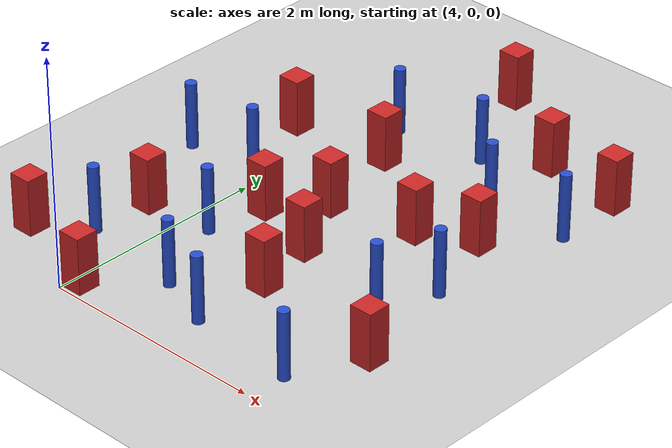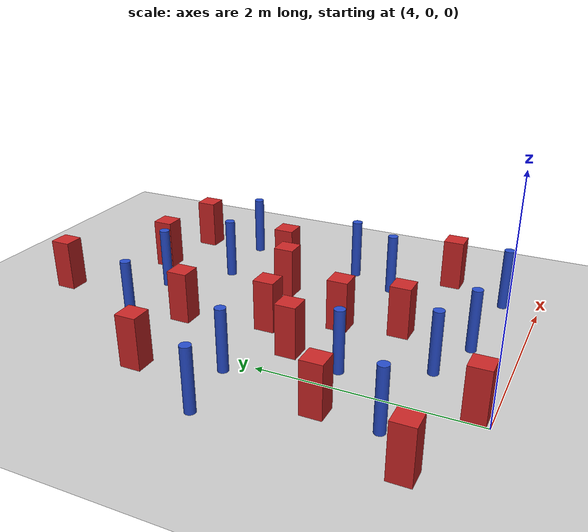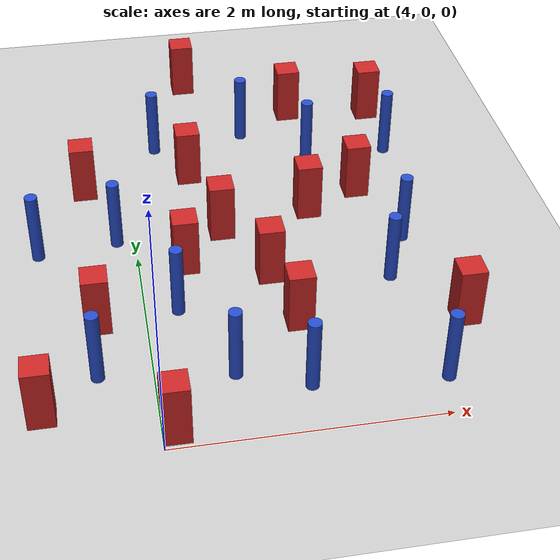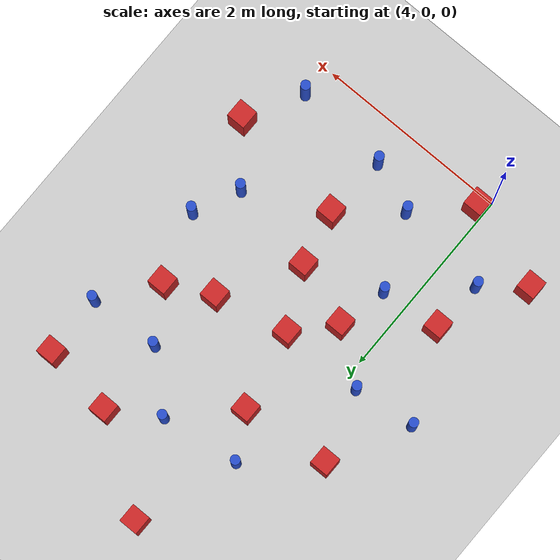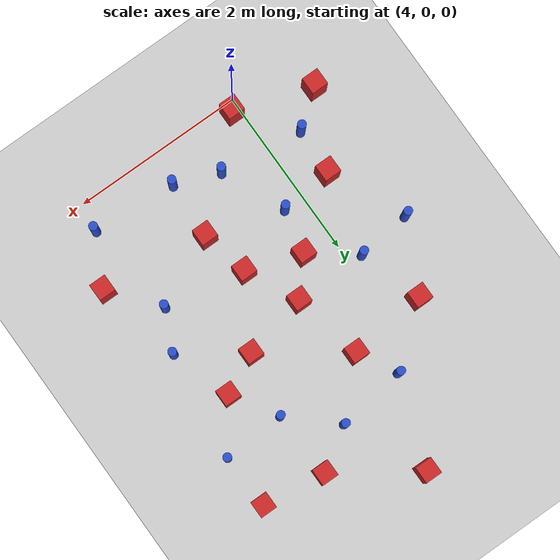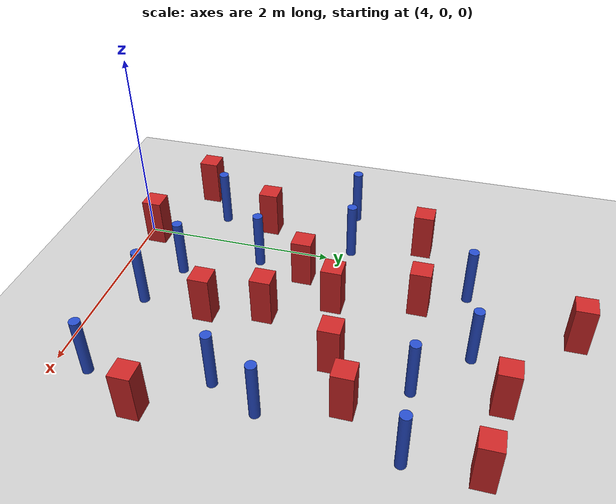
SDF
<sdf version="1.6">
 <world name="default">
  <model name="ground_plane">
   <static>1</static>
   <link name="link">
    <collision name="collision">
     <geometry><plane><normal>0 0 1</normal><size>100 100</size></plane></geometry>
     <surface><friction><ode><mu>100</mu><mu2>50</mu2></ode></friction></surface>
    </collision>
    <visual name="visual">
     <cast_shadows>0</cast_shadows>
     <geometry><plane><normal>0 0 1</normal><size>100 100</size></plane></geometry>
     <material>
      <ambient>1.0 1.0 1.0 1.0</ambient>
      <diffuse>0.8 0.8 0.8 1.0</diffuse>
      <specular>0.01 0.01 0.01 1.000000</specular>
     </material>
    </visual>
   </link>
  </model>
  <model name="pole_obstacle6">
   <static>true</static>
   <pose>3.60519064606 0.736603006341 2.88873142074e-08 -9.90536689285e-09 4.60219949002e-07 -1.20965994953e-07</pose>
   <link name="link">
    <pose>0 0 0.3 0 -0 0</pose>
    <inertial>
     <mass>1</mass>
     <inertia><ixx>0.145833</ixx><ixy>0</ixy><ixz>0</ixz><iyy>0.145833</iyy><iyz>0</iyz><izz>0.125</izz></inertia>
    </inertial>
    <collision name="collision">
     <geometry><cylinder><radius>0.05</radius><length>.6</length></cylinder></geometry>
    </collision>
    <visual name="visual">
     <geometry><cylinder><radius>0.05</radius><length>.6</length></cylinder></geometry>
     <material>
      <script><name>Gazebo/Blue</name><uri>file://media/materials/scripts/gazebo.material</uri></script>
     </material>
    </visual>
   </link>
  </model>
  <model name="pole_obstacle24">
   <static>true</static>
   <pose>5.08562448463 3.60974429058 2.88873142074e-08 -9.90536690245e-09 4.6021994898e-07 -1.20965994966e-07</pose>
   <link name="link">
    <pose>0 0 0.3 0 -0 0</pose>
    <inertial>
     <mass>1</mass>
     <inertia><ixx>0.145833</ixx><ixy>0</ixy><ixz>0</ixz><iyy>0.145833</iyy><iyz>0</iyz><izz>0.125</izz></inertia>
    </inertial>
    <collision name="collision">
     <geometry><cylinder><radius>0.05</radius><length>.6</length></cylinder></geometry>
    </collision>
    <visual name="visual">
     <geometry><cylinder><radius>0.05</radius><length>.6</length></cylinder></geometry>
     <material>
      <script><name>Gazebo/Blue</name><uri>file://media/materials/scripts/gazebo.material</uri></script>
     </material>
    </visual>
   </link>
  </model>
  <model name="pole_obstacle28">
   <static>true</static>
   <pose>4.28439598745 3.49828546201 2.88873142074e-08 -9.90536690245e-09 4.6021994898e-07 -1.20965994966e-07</pose>
   <link name="link">
    <pose>0 0 0.3 0 -0 0</pose>
    <inertial>
     <mass>1</mass>
     <inertia><ixx>0.145833</ixx><ixy>0</ixy><ixz>0</ixz><iyy>0.145833</iyy><iyz>0</iyz><izz>0.125</izz></inertia>
    </inertial>
    <collision name="collision">
     <geometry><cylinder><radius>0.05</radius><length>.6</length></cylinder></geometry>
    </collision>
    <visual name="visual">
     <geometry><cylinder><radius>0.05</radius><length>.6</length></cylinder></geometry>
     <material>
      <script><name>Gazebo/Blue</name><uri>file://media/materials/scripts/gazebo.material</uri></script>
     </material>
    </visual>
   </link>
  </model>
  <model name="square_post_obstacle26">
   <static>true</static>
   <pose>3.63503763821 2.95785120707 8.22691968438e-08 7.2212513382e-06 -7.54495500217e-07 2.29674213826e-05</pose>
   <link name="link">
    <pose>0 0 0.25 0 -0 0</pose>
    <inertial>
     <mass>100</mass>
     <inertia>
      <ixx>0.166667</ixx>
      <ixy>0</ixy>
      <ixz>0</ixz>
      <iyy>0.166667</iyy>
      <iyz>0</iyz>
      <izz>0.166667</izz>
     </inertia>
    </inertial>
    <collision name="collision"><geometry><box><size>.2 .2 .5</size></box></geometry></collision>
    <visual name="visual">
     <geometry><box><size>.2 .2 .5</size></box></geometry>
     <material>
      <script><name>Gazebo/Red</name><uri>file://media/materials/scripts/gazebo.material</uri></script>
     </material>
    </visual>
   </link>
  </model>
  <model name="square_post_obstacle28">
   <static>true</static>
   <pose>5.003298963 1.63625164232 8.22691968438e-08 7.2212513382e-06 -7.54495500217e-07 2.29674213826e-05</pose>
   <link name="link">
    <pose>0 0 0.25 0 -0 0</pose>
    <inertial>
     <mass>100</mass>
     <inertia>
      <ixx>0.166667</ixx>
      <ixy>0</ixy>
      <ixz>0</ixz>
      <iyy>0.166667</iyy>
      <iyz>0</iyz>
      <izz>0.166667</izz>
     </inertia>
    </inertial>
    <collision name="collision"><geometry><box><size>.2 .2 .5</size></box></geometry></collision>
    <visual name="visual">
     <geometry><box><size>.2 .2 .5</size></box></geometry>
     <material>
      <script><name>Gazebo/Red</name><uri>file://media/materials/scripts/gazebo.material</uri></script>
     </material>
    </visual>
   </link>
  </model>
  <model name="pole_obstacle39">
   <static>true</static>
   <pose>5.59773589964 3.13979027691 2.88873142074e-08 -9.90536690245e-09 4.6021994898e-07 -1.20965994966e-07</pose>
   <link name="link">
    <pose>0 0 0.3 0 -0 0</pose>
    <inertial>
     <mass>1</mass>
     <inertia><ixx>0.145833</ixx><ixy>0</ixy><ixz>0</ixz><iyy>0.145833</iyy><iyz>0</iyz><izz>0.125</izz></inertia>
    </inertial>
    <collision name="collision">
     <geometry><cylinder><radius>0.05</radius><length>.6</length></cylinder></geometry>
    </collision>
    <visual name="visual">
     <geometry><cylinder><radius>0.05</radius><length>.6</length></cylinder></geometry>
     <material>
      <script><name>Gazebo/Blue</name><uri>file://media/materials/scripts/gazebo.material</uri></script>
     </material>
    </visual>
   </link>
  </model>
  <model name="square_post_obstacle40">
   <static>true</static>
   <pose>4.70777016315 2.23714081134 8.22691968438e-08 7.2212513382e-06 -7.54495500217e-07 2.29674213826e-05</pose>
   <link name="link">
    <pose>0 0 0.25 0 -0 0</pose>
    <inertial>
     <mass>100</mass>
     <inertia>
      <ixx>0.166667</ixx>
      <ixy>0</ixy>
      <ixz>0</ixz>
      <iyy>0.166667</iyy>
      <iyz>0</iyz>
      <izz>0.166667</izz>
     </inertia>
    </inertial>
    <collision name="collision"><geometry><box><size>.2 .2 .5</size></box></geometry></collision>
    <visual name="visual">
     <geometry><box><size>.2 .2 .5</size></box></geometry>
     <material>
      <script><name>Gazebo/Red</name><uri>file://media/materials/scripts/gazebo.material</uri></script>
     </material>
    </visual>
   </link>
  </model>
  <model name="pole_obstacle58">
   <static>true</static>
   <pose>5.92919814433 1.45998157747 2.88873142074e-08 -9.90536689445e-09 4.60219948999e-07 -1.20965994956e-07</pose>
   <link name="link">
    <pose>0 0 0.3 0 -0 0</pose>
    <inertial>
     <mass>1</mass>
     <inertia><ixx>0.145833</ixx><ixy>0</ixy><ixz>0</ixz><iyy>0.145833</iyy><iyz>0</iyz><izz>0.125</izz></inertia>
    </inertial>
    <collision name="collision">
     <geometry><cylinder><radius>0.05</radius><length>.6</length></cylinder></geometry>
    </collision>
    <visual name="visual">
     <geometry><cylinder><radius>0.05</radius><length>.6</length></cylinder></geometry>
     <material>
      <script><name>Gazebo/Blue</name><uri>file://media/materials/scripts/gazebo.material</uri></script>
     </material>
    </visual>
   </link>
  </model>
  <model name="square_post_obstacle45">
   <static>true</static>
   <pose>4.65703033753 4.52559358497 8.22691968438e-08 7.2212513382e-06 -7.54495500217e-07 2.29674213826e-05</pose>
   <link name="link">
    <pose>0 0 0.25 0 -0 0</pose>
    <inertial>
     <mass>100</mass>
     <inertia>
      <ixx>0.166667</ixx>
      <ixy>0</ixy>
      <ixz>0</ixz>
      <iyy>0.166667</iyy>
      <iyz>0</iyz>
      <izz>0.166667</izz>
     </inertia>
    </inertial>
    <collision name="collision"><geometry><box><size>.2 .2 .5</size></box></geometry></collision>
    <visual name="visual">
     <geometry><box><size>.2 .2 .5</size></box></geometry>
     <material>
      <script><name>Gazebo/Red</name><uri>file://media/materials/scripts/gazebo.material</uri></script>
     </material>
    </visual>
   </link>
  </model>
  <model name="pole_obstacle75">
   <static>true</static>
   <pose>6.14746203454 1.92521920841 2.88873142074e-08 -9.90536689445e-09 4.60219948999e-07 -1.20965994956e-07</pose>
   <link name="link">
    <pose>0 0 0.3 0 -0 0</pose>
    <inertial>
     <mass>1</mass>
     <inertia><ixx>0.145833</ixx><ixy>0</ixy><ixz>0</ixz><iyy>0.145833</iyy><iyz>0</iyz><izz>0.125</izz></inertia>
    </inertial>
    <collision name="collision">
     <geometry><cylinder><radius>0.05</radius><length>.6</length></cylinder></geometry>
    </collision>
    <visual name="visual">
     <geometry><cylinder><radius>0.05</radius><length>.6</length></cylinder></geometry>
     <material>
      <script><name>Gazebo/Blue</name><uri>file://media/materials/scripts/gazebo.material</uri></script>
     </material>
    </visual>
   </link>
  </model>
  <model name="pole_obstacle82">
   <static>true</static>
   <pose>6.06059148059 0.338739686937 2.88873142074e-08 -9.90536689981e-09 4.60219948986e-07 -1.20965994962e-07</pose>
   <link name="link">
    <pose>0 0 0.3 0 -0 0</pose>
    <inertial>
     <mass>1</mass>
     <inertia><ixx>0.145833</ixx><ixy>0</ixy><ixz>0</ixz><iyy>0.145833</iyy><iyz>0</iyz><izz>0.125</izz></inertia>
    </inertial>
    <collision name="collision">
     <geometry><cylinder><radius>0.05</radius><length>.6</length></cylinder></geometry>
    </collision>
    <visual name="visual">
     <geometry><cylinder><radius>0.05</radius><length>.6</length></cylinder></geometry>
     <material>
      <script><name>Gazebo/Blue</name><uri>file://media/materials/scripts/gazebo.material</uri></script>
     </material>
    </visual>
   </link>
  </model>
  <model name="square_post_obstacle107">
   <static>true</static>
   <pose>3.20530987433 0.423398128547 8.22691968438e-08 7.2212513382e-06 -7.54495500217e-07 2.29674213826e-05</pose>
   <link name="link">
    <pose>0 0 0.25 0 -0 0</pose>
    <inertial>
     <mass>100</mass>
     <inertia>
      <ixx>0.166667</ixx>
      <ixy>0</ixy>
      <ixz>0</ixz>
      <iyy>0.166667</iyy>
      <iyz>0</iyz>
      <izz>0.166667</izz>
     </inertia>
    </inertial>
    <collision name="collision"><geometry><box><size>.2 .2 .5</size></box></geometry></collision>
    <visual name="visual">
     <geometry><box><size>.2 .2 .5</size></box></geometry>
     <material>
      <script><name>Gazebo/Red</name><uri>file://media/materials/scripts/gazebo.material</uri></script>
     </material>
    </visual>
   </link>
  </model>
  <model name="pole_obstacle113">
   <static>true</static>
   <pose>3.85451385964 2.22927541365 2.88873142074e-08 -9.90536690232e-09 4.6021994898e-07 -1.20965994968e-07</pose>
   <link name="link">
    <pose>0 0 0.3 0 -0 0</pose>
    <inertial>
     <mass>1</mass>
     <inertia><ixx>0.145833</ixx><ixy>0</ixy><ixz>0</ixz><iyy>0.145833</iyy><iyz>0</iyz><izz>0.125</izz></inertia>
    </inertial>
    <collision name="collision">
     <geometry><cylinder><radius>0.05</radius><length>.6</length></cylinder></geometry>
    </collision>
    <visual name="visual">
     <geometry><cylinder><radius>0.05</radius><length>.6</length></cylinder></geometry>
     <material>
      <script><name>Gazebo/Blue</name><uri>file://media/materials/scripts/gazebo.material</uri></script>
     </material>
    </visual>
   </link>
  </model>
  <model name="square_post_obstacle118">
   <static>true</static>
   <pose>5.56519952009 3.90966847611 8.22691968438e-08 7.2212513382e-06 -7.54495500217e-07 2.29674213826e-05</pose>
   <link name="link">
    <pose>0 0 0.25 0 -0 0</pose>
    <inertial>
     <mass>100</mass>
     <inertia>
      <ixx>0.166667</ixx>
      <ixy>0</ixy>
      <ixz>0</ixz>
      <iyy>0.166667</iyy>
      <iyz>0</iyz>
      <izz>0.166667</izz>
     </inertia>
    </inertial>
    <collision name="collision"><geometry><box><size>.2 .2 .5</size></box></geometry></collision>
    <visual name="visual">
     <geometry><box><size>.2 .2 .5</size></box></geometry>
     <material>
      <script><name>Gazebo/Red</name><uri>file://media/materials/scripts/gazebo.material</uri></script>
     </material>
    </visual>
   </link>
  </model>
  <model name="pole_obstacle122">
   <static>true</static>
   <pose>4.25042388028 1.34007896724 2.88873142074e-08 -9.90536689445e-09 4.60219948999e-07 -1.20965994956e-07</pose>
   <link name="link">
    <pose>0 0 0.3 0 -0 0</pose>
    <inertial>
     <mass>1</mass>
     <inertia><ixx>0.145833</ixx><ixy>0</ixy><ixz>0</ixz><iyy>0.145833</iyy><iyz>0</iyz><izz>0.125</izz></inertia>
    </inertial>
    <collision name="collision">
     <geometry><cylinder><radius>0.05</radius><length>.6</length></cylinder></geometry>
    </collision>
    <visual name="visual">
     <geometry><cylinder><radius>0.05</radius><length>.6</length></cylinder></geometry>
     <material>
      <script><name>Gazebo/Blue</name><uri>file://media/materials/scripts/gazebo.material</uri></script>
     </material>
    </visual>
   </link>
  </model>
  <model name="pole_obstacle126">
   <static>true</static>
   <pose>5.08772715777 0.414674503026 2.88873142074e-08 -9.90536689981e-09 4.60219948986e-07 -1.20965994962e-07</pose>
   <link name="link">
    <pose>0 0 0.3 0 -0 0</pose>
    <inertial>
     <mass>1</mass>
     <inertia><ixx>0.145833</ixx><ixy>0</ixy><ixz>0</ixz><iyy>0.145833</iyy><iyz>0</iyz><izz>0.125</izz></inertia>
    </inertial>
    <collision name="collision">
     <geometry><cylinder><radius>0.05</radius><length>.6</length></cylinder></geometry>
    </collision>
    <visual name="visual">
     <geometry><cylinder><radius>0.05</radius><length>.6</length></cylinder></geometry>
     <material>
      <script><name>Gazebo/Blue</name><uri>file://media/materials/scripts/gazebo.material</uri></script>
     </material>
    </visual>
   </link>
  </model>
  <model name="square_post_obstacle126">
   <static>true</static>
   <pose>5.12427239771 1.07957800826 8.22691968438e-08 7.2212513382e-06 -7.54495500217e-07 2.29674213826e-05</pose>
   <link name="link">
    <pose>0 0 0.25 0 -0 0</pose>
    <inertial>
     <mass>100</mass>
     <inertia>
      <ixx>0.166667</ixx>
      <ixy>0</ixy>
      <ixz>0</ixz>
      <iyy>0.166667</iyy>
      <iyz>0</iyz>
      <izz>0.166667</izz>
     </inertia>
    </inertial>
    <collision name="collision"><geometry><box><size>.2 .2 .5</size></box></geometry></collision>
    <visual name="visual">
     <geometry><box><size>.2 .2 .5</size></box></geometry>
     <material>
      <script><name>Gazebo/Red</name><uri>file://media/materials/scripts/gazebo.material</uri></script>
     </material>
    </visual>
   </link>
  </model>
  <model name="square_post_obstacle127">
   <static>true</static>
   <pose>6.36009892333 0.924572274981 8.22691968438e-08 7.2212513382e-06 -7.54495500217e-07 2.29674213826e-05</pose>
   <link name="link">
    <pose>0 0 0.25 0 -0 0</pose>
    <inertial>
     <mass>100</mass>
     <inertia>
      <ixx>0.166667</ixx>
      <ixy>0</ixy>
      <ixz>0</ixz>
      <iyy>0.166667</iyy>
      <iyz>0</iyz>
      <izz>0.166667</izz>
     </inertia>
    </inertial>
    <collision name="collision"><geometry><box><size>.2 .2 .5</size></box></geometry></collision>
    <visual name="visual">
     <geometry><box><size>.2 .2 .5</size></box></geometry>
     <material>
      <script><name>Gazebo/Red</name><uri>file://media/materials/scripts/gazebo.material</uri></script>
     </material>
    </visual>
   </link>
  </model>
  <model name="square_post_obstacle133">
   <static>true</static>
   <pose>4.53484420774 3.05019987005 8.22691968438e-08 7.2212513382e-06 -7.54495500217e-07 2.29674213826e-05</pose>
   <link name="link">
    <pose>0 0 0.25 0 -0 0</pose>
    <inertial>
     <mass>100</mass>
     <inertia>
      <ixx>0.166667</ixx>
      <ixy>0</ixy>
      <ixz>0</ixz>
      <iyy>0.166667</iyy>
      <iyz>0</iyz>
      <izz>0.166667</izz>
     </inertia>
    </inertial>
    <collision name="collision"><geometry><box><size>.2 .2 .5</size></box></geometry></collision>
    <visual name="visual">
     <geometry><box><size>.2 .2 .5</size></box></geometry>
     <material>
      <script><name>Gazebo/Red</name><uri>file://media/materials/scripts/gazebo.material</uri></script>
     </material>
    </visual>
   </link>
  </model>
  <model name="pole_obstacle166">
   <static>true</static>
   <pose>3.22345594826 2.15547379451 2.88873142074e-08 -9.90536690232e-09 4.6021994898e-07 -1.20965994968e-07</pose>
   <link name="link">
    <pose>0 0 0.3 0 -0 0</pose>
    <inertial>
     <mass>1</mass>
     <inertia><ixx>0.145833</ixx><ixy>0</ixy><ixz>0</ixz><iyy>0.145833</iyy><iyz>0</iyz><izz>0.125</izz></inertia>
    </inertial>
    <collision name="collision">
     <geometry><cylinder><radius>0.05</radius><length>.6</length></cylinder></geometry>
    </collision>
    <visual name="visual">
     <geometry><cylinder><radius>0.05</radius><length>.6</length></cylinder></geometry>
     <material>
      <script><name>Gazebo/Blue</name><uri>file://media/materials/scripts/gazebo.material</uri></script>
     </material>
    </visual>
   </link>
  </model>
  <model name="square_post_obstacle164">
   <static>true</static>
   <pose>3.64274571235 1.27791009696 8.22691968438e-08 7.2212513382e-06 -7.54495500217e-07 2.29674213826e-05</pose>
   <link name="link">
    <pose>0 0 0.25 0 -0 0</pose>
    <inertial>
     <mass>100</mass>
     <inertia>
      <ixx>0.166667</ixx>
      <ixy>0</ixy>
      <ixz>0</ixz>
      <iyy>0.166667</iyy>
      <iyz>0</iyz>
      <izz>0.166667</izz>
     </inertia>
    </inertial>
    <collision name="collision"><geometry><box><size>.2 .2 .5</size></box></geometry></collision>
    <visual name="visual">
     <geometry><box><size>.2 .2 .5</size></box></geometry>
     <material>
      <script><name>Gazebo/Red</name><uri>file://media/materials/scripts/gazebo.material</uri></script>
     </material>
    </visual>
   </link>
  </model>
  <model name="square_post_obstacle172">
   <static>true</static>
   <pose>4.09650303265 0.130672828662 8.22691968438e-08 7.2212513382e-06 -7.54495500217e-07 2.29674213826e-05</pose>
   <link name="link">
    <pose>0 0 0.25 0 -0 0</pose>
    <inertial>
     <mass>100</mass>
     <inertia>
      <ixx>0.166667</ixx>
      <ixy>0</ixy>
      <ixz>0</ixz>
      <iyy>0.166667</iyy>
      <iyz>0</iyz>
      <izz>0.166667</izz>
     </inertia>
    </inertial>
    <collision name="collision"><geometry><box><size>.2 .2 .5</size></box></geometry></collision>
    <visual name="visual">
     <geometry><box><size>.2 .2 .5</size></box></geometry>
     <material>
      <script><name>Gazebo/Red</name><uri>file://media/materials/scripts/gazebo.material</uri></script>
     </material>
    </visual>
   </link>
  </model>
  <model name="square_post_obstacle196">
   <static>true</static>
   <pose>5.9165622772 2.62771921789 8.22691968438e-08 7.2212513382e-06 -7.54495500217e-07 2.29674213826e-05</pose>
   <link name="link">
    <pose>0 0 0.25 0 -0 0</pose>
    <inertial>
     <mass>100</mass>
     <inertia>
      <ixx>0.166667</ixx>
      <ixy>0</ixy>
      <ixz>0</ixz>
      <iyy>0.166667</iyy>
      <iyz>0</iyz>
      <izz>0.166667</izz>
     </inertia>
    </inertial>
    <collision name="collision"><geometry><box><size>.2 .2 .5</size></box></geometry></collision>
    <visual name="visual">
     <geometry><box><size>.2 .2 .5</size></box></geometry>
     <material>
      <script><name>Gazebo/Red</name><uri>file://media/materials/scripts/gazebo.material</uri></script>
     </material>
    </visual>
   </link>
  </model>
  <model name="pole_obstacle209">
   <static>true</static>
   <pose>4.5745432256 0.608315319689 2.88873142074e-08 -9.90536689837e-09 4.60219948989e-07 -1.2096599496e-07</pose>
   <link name="link">
    <pose>0 0 0.3 0 -0 0</pose>
    <inertial>
     <mass>1</mass>
     <inertia><ixx>0.145833</ixx><ixy>0</ixy><ixz>0</ixz><iyy>0.145833</iyy><iyz>0</iyz><izz>0.125</izz></inertia>
    </inertial>
    <collision name="collision">
     <geometry><cylinder><radius>0.05</radius><length>.6</length></cylinder></geometry>
    </collision>
    <visual name="visual">
     <geometry><cylinder><radius>0.05</radius><length>.6</length></cylinder></geometry>
     <material>
      <script><name>Gazebo/Blue</name><uri>file://media/materials/scripts/gazebo.material</uri></script>
     </material>
    </visual>
   </link>
  </model>
  <model name="pole_obstacle210">
   <static>true</static>
   <pose>6.31878584774 3.1759435955 2.88873142074e-08 -9.90536690245e-09 4.6021994898e-07 -1.20965994966e-07</pose>
   <link name="link">
    <pose>0 0 0.3 0 -0 0</pose>
    <inertial>
     <mass>1</mass>
     <inertia><ixx>0.145833</ixx><ixy>0</ixy><ixz>0</ixz><iyy>0.145833</iyy><iyz>0</iyz><izz>0.125</izz></inertia>
    </inertial>
    <collision name="collision">
     <geometry><cylinder><radius>0.05</radius><length>.6</length></cylinder></geometry>
    </collision>
    <visual name="visual">
     <geometry><cylinder><radius>0.05</radius><length>.6</length></cylinder></geometry>
     <material>
      <script><name>Gazebo/Blue</name><uri>file://media/materials/scripts/gazebo.material</uri></script>
     </material>
    </visual>
   </link>
  </model>
  <model name="square_post_obstacle211">
   <static>true</static>
   <pose>6.29547298536 3.80875391627 8.22691968438e-08 7.2212513382e-06 -7.54495500217e-07 2.29674213826e-05</pose>
   <link name="link">
    <pose>0 0 0.25 0 -0 0</pose>
    <inertial>
     <mass>100</mass>
     <inertia>
      <ixx>0.166667</ixx>
      <ixy>0</ixy>
      <ixz>0</ixz>
      <iyy>0.166667</iyy>
      <iyz>0</iyz>
      <izz>0.166667</izz>
     </inertia>
    </inertial>
    <collision name="collision"><geometry><box><size>.2 .2 .5</size></box></geometry></collision>
    <visual name="visual">
     <geometry><box><size>.2 .2 .5</size></box></geometry>
     <material>
      <script><name>Gazebo/Red</name><uri>file://media/materials/scripts/gazebo.material</uri></script>
     </material>
    </visual>
   </link>
  </model>
  <model name="square_post_obstacle218">
   <static>true</static>
   <pose>5.45767003262 2.40371996466 8.22691968438e-08 7.2212513382e-06 -7.54495500217e-07 2.29674213826e-05</pose>
   <link name="link">
    <pose>0 0 0.25 0 -0 0</pose>
    <inertial>
     <mass>100</mass>
     <inertia>
      <ixx>0.166667</ixx>
      <ixy>0</ixy>
      <ixz>0</ixz>
      <iyy>0.166667</iyy>
      <iyz>0</iyz>
      <izz>0.166667</izz>
     </inertia>
    </inertial>
    <collision name="collision"><geometry><box><size>.2 .2 .5</size></box></geometry></collision>
    <visual name="visual">
     <geometry><box><size>.2 .2 .5</size></box></geometry>
     <material>
      <script><name>Gazebo/Red</name><uri>file://media/materials/scripts/gazebo.material</uri></script>
     </material>
    </visual>
   </link>
  </model>
  <model name="square_post_obstacle224">
   <static>true</static>
   <pose>4.36900003262 1.84986996466 8.22691968438e-08 7.2212513382e-06 -7.54495500217e-07 2.29674213826e-05</pose>
   <link name="link">
    <pose>0 0 0.25 0 -0 0</pose>
    <inertial>
     <mass>100</mass>
     <inertia>
      <ixx>0.166667</ixx>
      <ixy>0</ixy>
      <ixz>0</ixz>
      <iyy>0.166667</iyy>
      <iyz>0</iyz>
      <izz>0.166667</izz>
     </inertia>
    </inertial>
    <collision name="collision"><geometry><box><size>.2 .2 .5</size></box></geometry></collision>
    <visual name="visual">
     <geometry><box><size>.2 .2 .5</size></box></geometry>
     <material>
      <script><name>Gazebo/Red</name><uri>file://media/materials/scripts/gazebo.material</uri></script>
     </material>
    </visual>
   </link>
  </model>
 </world>
</sdf>
